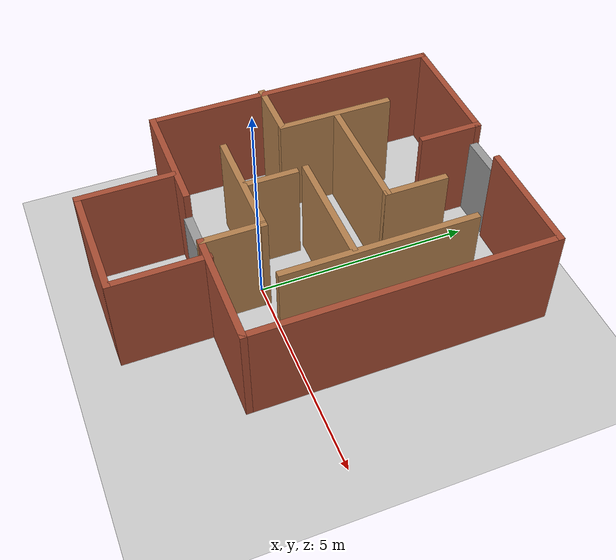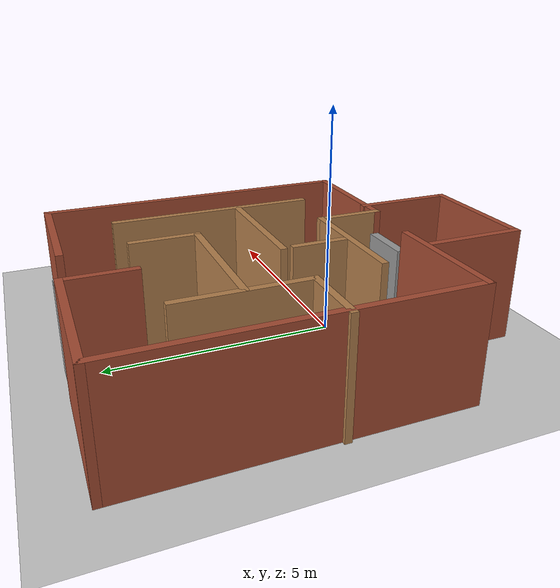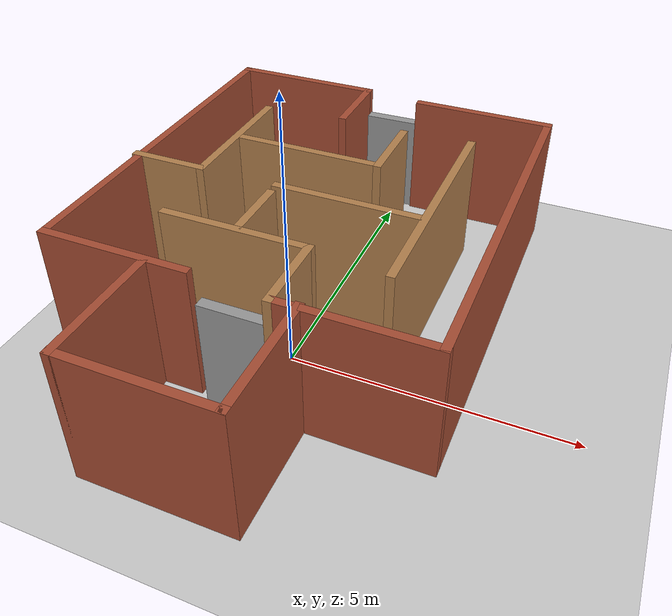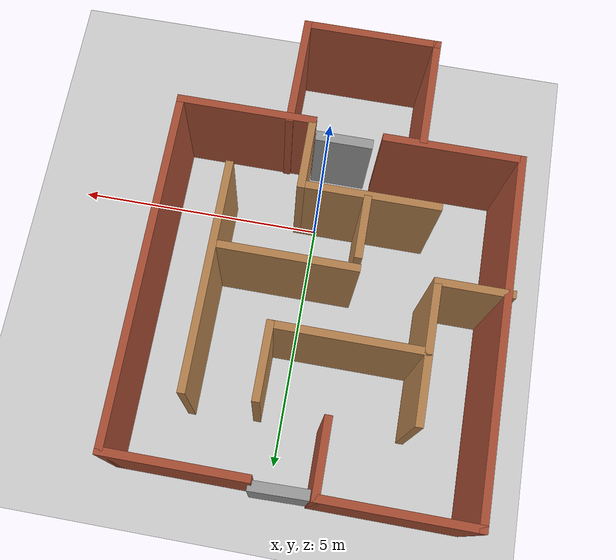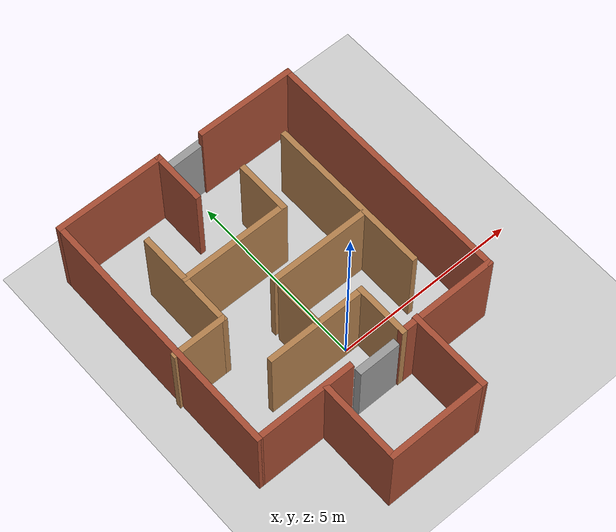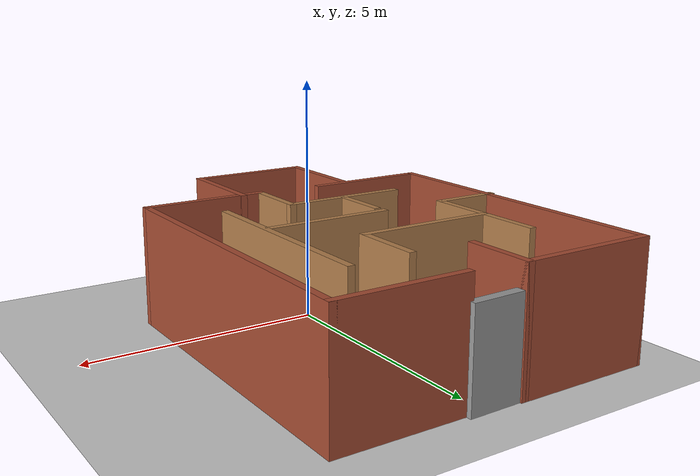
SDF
<sdf version="1.7">
 <world name="default">
  <light name="sun" type="directional">
   <pose>0 0 10 0 -0 0</pose>
   <diffuse>0.8 0.8 0.8 1</diffuse>
   <specular>0.2 0.2 0.2 1</specular>
   <attenuation>
    <range>1000</range>
    <constant>0.9</constant>
    <linear>0.01</linear>
    <quadratic>0.001</quadratic>
   </attenuation>
   <direction>-0.5 0.1 -0.9</direction>
   <spot><inner_angle>0</inner_angle><outer_angle>0</outer_angle><falloff>0</falloff></spot>
  </light>
  <model name="ground_plane">
   <static>1</static>
   <link name="link">
    <collision name="collision">
     <geometry><plane><normal>0 0 1</normal><size>100 100</size></plane></geometry>
     <surface>
      <contact><collide_bitmask>65535</collide_bitmask></contact>
      <friction><ode><mu>100</mu><mu2>50</mu2></ode></friction>
     </surface>
    </collision>
    <visual name="visual">
     <cast_shadows>0</cast_shadows>
     <geometry><plane><normal>0 0 1</normal><size>100 100</size></plane></geometry>
     <material>
      <script><uri>file://media/materials/scripts/gazebo.material</uri><name>Gazebo/Grey</name></script>
     </material>
    </visual>
   </link>
  </model>
  <gravity>0 0 -9.8</gravity>
  <magnetic_field>6e-06 2.3e-05 -4.2e-05</magnetic_field>
  <atmosphere type="adiabatic"/>
  <physics type="ode">
   <max_step_size>0.001</max_step_size>
   <real_time_factor>1</real_time_factor>
   <real_time_update_rate>1000</real_time_update_rate>
  </physics>
  <scene><ambient>0.4 0.4 0.4 1</ambient><background>0.7 0.7 0.7 1</background><shadows>1</shadows></scene>
  <audio><device>default</device></audio>
  <spherical_coordinates>
   <surface_model>EARTH_WGS84</surface_model>
   <latitude_deg>0</latitude_deg>
   <longitude_deg>0</longitude_deg>
   <elevation>0</elevation>
   <heading_deg>0</heading_deg>
  </spherical_coordinates>
  <model name="maze">
   <pose>-0.3755 1.08925 0 0 -0 0</pose>
   <link name="Door_0">
    <collision name="Door_0_Collision">
     <geometry><box><size>1.14334 0.2 2</size></box></geometry>
     <pose>0 0 1 0 -0 0</pose>
    </collision>
    <visual name="Door_0_Visual">
     <pose>0 0 1 0 -0 0</pose>
     <geometry><box><size>1.14334 0.2 2</size></box></geometry>
     <material>
      <script><uri>file://media/materials/scripts/gazebo.material</uri><name>Gazebo/Grey</name></script>
     </material>
    </visual>
    <pose>0.092757 -2.3864 0 0 -0 0</pose>
   </link>
   <link name="Door_1">
    <collision name="Door_1_Collision">
     <geometry><box><size>1.15389 0.2 2</size></box></geometry>
     <pose>0 0 1 0 -0 0</pose>
    </collision>
    <visual name="Door_1_Visual">
     <pose>0 0 1 0 -0 0</pose>
     <geometry><box><size>1.15389 0.2 2</size></box></geometry>
     <material>
      <script><uri>file://media/materials/scripts/gazebo.material</uri><name>Gazebo/Grey</name></script>
     </material>
    </visual>
    <pose>0.1781 4.46775 0 0 0 -3.11885</pose>
   </link>
   <link name="Wall_0">
    <collision name="Wall_0_Collision">
     <geometry><box><size>7 0.15 2.5</size></box></geometry>
     <pose>0 0 1.25 0 -0 0</pose>
    </collision>
    <visual name="Wall_0_Visual">
     <pose>0 0 1.25 0 -0 0</pose>
     <geometry><box><size>7 0.15 2.5</size></box></geometry>
     <material>
      <script><uri>file://media/materials/scripts/gazebo.material</uri><name>Gazebo/Bricks</name></script>
      <ambient>1 1 1 1</ambient>
     </material>
     <meta><layer>0</layer></meta>
    </visual>
    <pose>-3.28923 1.09265 0 0 -0 -1.5708</pose>
   </link>
   <link name="Wall_1">
    <collision name="Wall_1_Collision">
     <geometry><box><size>2.75 0.15 2.5</size></box></geometry>
     <pose>0 0 1.25 0 -0 0</pose>
    </collision>
    <visual name="Wall_1_Visual">
     <pose>0 0 1.25 0 -0 0</pose>
     <geometry><box><size>2.75 0.15 2.5</size></box></geometry>
     <material>
      <script><uri>file://media/materials/scripts/gazebo.material</uri><name>Gazebo/Bricks</name></script>
      <ambient>1 1 1 1</ambient>
     </material>
     <meta><layer>0</layer></meta>
    </visual>
    <pose>-1.98923 -2.33235 0 0 -0 0</pose>
   </link>
   <link name="Wall_10">
    <collision name="Wall_10_Collision">
     <geometry><box><size>1.5 0.15 2.5</size></box></geometry>
     <pose>0 0 1.25 0 -0 0</pose>
    </collision>
    <visual name="Wall_10_Visual">
     <pose>0 0 1.25 0 -0 0</pose>
     <geometry><box><size>1.5 0.15 2.5</size></box></geometry>
     <material>
      <script><uri>file://media/materials/scripts/gazebo.material</uri><name>Gazebo/Wood</name></script>
      <ambient>1 1 1 1</ambient>
     </material>
     <meta><layer>0</layer></meta>
    </visual>
    <pose>0.856081 2.34759 0 0 -0 1.5708</pose>
   </link>
   <link name="Wall_12">
    <collision name="Wall_12_Collision">
     <geometry><box><size>2.75 0.15 2.5</size></box></geometry>
     <pose>0 0 1.25 0 -0 0</pose>
    </collision>
    <visual name="Wall_12_Visual">
     <pose>0 0 1.25 0 -0 0</pose>
     <geometry><box><size>2.75 0.15 2.5</size></box></geometry>
     <material>
      <script><uri>file://media/materials/scripts/gazebo.material</uri><name>Gazebo/Bricks</name></script>
      <ambient>1 1 1 1</ambient>
     </material>
     <meta><layer>0</layer></meta>
    </visual>
    <pose>2.05862 4.402 0 0 -0 0</pose>
   </link>
   <link name="Wall_13">
    <collision name="Wall_13_Collision">
     <geometry><box><size>7 0.15 2.5</size></box></geometry>
     <pose>0 0 1.25 0 -0 0</pose>
    </collision>
    <visual name="Wall_13_Visual">
     <pose>0 0 1.25 0 -0 0</pose>
     <geometry><box><size>7 0.15 2.5</size></box></geometry>
     <material>
      <script><uri>file://media/materials/scripts/gazebo.material</uri><name>Gazebo/Bricks</name></script>
      <ambient>1 1 1 1</ambient>
     </material>
     <meta><layer>0</layer></meta>
    </visual>
    <pose>3.35862 0.976999 0 0 -0 -1.5708</pose>
   </link>
   <link name="Wall_14">
    <collision name="Wall_14_Collision">
     <geometry><box><size>2.75 0.15 2.5</size></box></geometry>
     <pose>0 0 1.25 0 -0 0</pose>
    </collision>
    <visual name="Wall_14_Visual">
     <pose>0 0 1.25 0 -0 0</pose>
     <geometry><box><size>2.75 0.15 2.5</size></box></geometry>
     <material>
      <script><uri>file://media/materials/scripts/gazebo.material</uri><name>Gazebo/Bricks</name></script>
      <ambient>1 1 1 1</ambient>
     </material>
     <meta><layer>0</layer></meta>
    </visual>
    <pose>2.05862 -2.448 0 0 -0 3.14159</pose>
   </link>
   <link name="Wall_15">
    <collision name="Wall_15_Collision">
     <geometry><box><size>1.5 0.15 2.5</size></box></geometry>
     <pose>0 0 1.25 0 -0 0</pose>
    </collision>
    <visual name="Wall_15_Visual">
     <pose>0 0 1.25 0 -0 0</pose>
     <geometry><box><size>1.5 0.15 2.5</size></box></geometry>
     <material>
      <script><uri>file://media/materials/scripts/gazebo.material</uri><name>Gazebo/Wood</name></script>
      <ambient>1 1 1 1</ambient>
     </material>
     <meta><layer>0</layer></meta>
    </visual>
    <pose>0.758624 -1.773 0 0 -0 1.5708</pose>
   </link>
   <link name="Wall_16">
    <collision name="Wall_16_Collision">
     <geometry><box><size>2.75 0.15 2.5</size></box></geometry>
     <pose>0 0 1.25 0 -0 0</pose>
    </collision>
    <visual name="Wall_16_Visual">
     <pose>0 0 1.25 0 -0 0</pose>
     <geometry><box><size>2.75 0.15 2.5</size></box></geometry>
     <material>
      <script><uri>file://media/materials/scripts/gazebo.material</uri><name>Gazebo/Wood</name></script>
      <ambient>1 1 1 1</ambient>
     </material>
     <meta><layer>0</layer></meta>
    </visual>
    <pose>-0.541376 -1.098 0 0 -0 3.14159</pose>
   </link>
   <link name="Wall_19">
    <collision name="Wall_19_Collision">
     <geometry><box><size>1.25 0.15 2.5</size></box></geometry>
     <pose>0 0 1.25 0 -0 0</pose>
    </collision>
    <visual name="Wall_19_Visual">
     <pose>0 0 1.25 0 -0 0</pose>
     <geometry><box><size>1.25 0.15 2.5</size></box></geometry>
     <material>
      <script><uri>file://media/materials/scripts/gazebo.material</uri><name>Gazebo/Wood</name></script>
      <ambient>1 1 1 1</ambient>
     </material>
     <meta><layer>0</layer></meta>
    </visual>
    <pose>-0.51356 -0.460563 0 0 -0 1.5708</pose>
   </link>
   <link name="Wall_23">
    <collision name="Wall_23_Collision">
     <geometry><box><size>4.5 0.15 2.5</size></box></geometry>
     <pose>0 0 1.25 0 -0 0</pose>
    </collision>
    <visual name="Wall_23_Visual">
     <pose>0 0 1.25 0 -0 0</pose>
     <geometry><box><size>4.5 0.15 2.5</size></box></geometry>
     <material>
      <script><uri>file://media/materials/scripts/gazebo.material</uri><name>Gazebo/Wood</name></script>
      <ambient>1 1 1 1</ambient>
     </material>
     <meta><layer>0</layer></meta>
    </visual>
    <pose>2.16959 0.931685 0 0 -0 -1.5708</pose>
   </link>
   <link name="Wall_25">
    <collision name="Wall_25_Collision">
     <geometry><box><size>2.75 0.15 2.5</size></box></geometry>
     <pose>0 0 1.25 0 -0 0</pose>
    </collision>
    <visual name="Wall_25_Visual">
     <pose>0 0 1.25 0 -0 0</pose>
     <geometry><box><size>2.75 0.15 2.5</size></box></geometry>
     <material>
      <script><uri>file://media/materials/scripts/gazebo.material</uri><name>Gazebo/Wood</name></script>
      <ambient>1 1 1 1</ambient>
     </material>
     <meta><layer>0</layer></meta>
    </visual>
    <pose>0.78644 0.354143 0 0 -0 0</pose>
   </link>
   <link name="Wall_27">
    <collision name="Wall_27_Collision">
     <geometry><box><size>2.25 0.15 2.5</size></box></geometry>
     <pose>0 0 1.25 0 -0 0</pose>
    </collision>
    <visual name="Wall_27_Visual">
     <pose>0 0 1.25 0 -0 0</pose>
     <geometry><box><size>2.25 0.15 2.5</size></box></geometry>
     <material>
      <script><uri>file://media/materials/scripts/gazebo.material</uri><name>Gazebo/Bricks</name></script>
      <ambient>1 1 1 1</ambient>
     </material>
     <meta><layer>0</layer></meta>
    </visual>
    <pose>-1.39592 -3.46765 0 0 -0 -1.5708</pose>
   </link>
   <link name="Wall_28">
    <collision name="Wall_28_Collision">
     <geometry><box><size>2.75 0.15 2.5</size></box></geometry>
     <pose>0 0 1.25 0 -0 0</pose>
    </collision>
    <visual name="Wall_28_Visual">
     <pose>0 0 1.25 0 -0 0</pose>
     <geometry><box><size>2.75 0.15 2.5</size></box></geometry>
     <material>
      <script><uri>file://media/materials/scripts/gazebo.material</uri><name>Gazebo/Bricks</name></script>
      <ambient>1 1 1 1</ambient>
     </material>
     <meta><layer>0</layer></meta>
    </visual>
    <pose>-0.095918 -4.51765 0 0 -0 0</pose>
   </link>
   <link name="Wall_29">
    <collision name="Wall_29_Collision">
     <geometry><box><size>2.25 0.15 2.5</size></box></geometry>
     <pose>0 0 1.25 0 -0 0</pose>
    </collision>
    <visual name="Wall_29_Visual">
     <pose>0 0 1.25 0 -0 0</pose>
     <geometry><box><size>2.25 0.15 2.5</size></box></geometry>
     <material>
      <script><uri>file://media/materials/scripts/gazebo.material</uri><name>Gazebo/Bricks</name></script>
      <ambient>1 1 1 1</ambient>
     </material>
     <meta><layer>0</layer></meta>
    </visual>
    <pose>1.20408 -3.46765 0 0 -0 1.5708</pose>
   </link>
   <link name="Wall_3">
    <collision name="Wall_3_Collision">
     <geometry><box><size>3 0.15 2.5</size></box></geometry>
     <pose>0 0 1.25 0 -0 0</pose>
    </collision>
    <visual name="Wall_3_Visual">
     <pose>0 0 1.25 0 -0 0</pose>
     <geometry><box><size>3 0.15 2.5</size></box></geometry>
     <material>
      <script><uri>file://media/materials/scripts/gazebo.material</uri><name>Gazebo/Bricks</name></script>
      <ambient>1 1 1 1</ambient>
     </material>
     <meta><layer>0</layer></meta>
    </visual>
    <pose>-1.86423 4.51765 0 0 -0 0</pose>
   </link>
   <link name="Wall_4">
    <collision name="Wall_4_Collision">
     <geometry><box><size>1.5 0.15 2.5</size></box></geometry>
     <pose>0 0 1.25 0 -0 0</pose>
    </collision>
    <visual name="Wall_4_Visual">
     <pose>0 0 1.25 0 -0 0</pose>
     <geometry><box><size>1.5 0.15 2.5</size></box></geometry>
     <material>
      <script><uri>file://media/materials/scripts/gazebo.material</uri><name>Gazebo/Bricks</name></script>
      <ambient>1 1 1 1</ambient>
     </material>
     <meta><layer>0</layer></meta>
    </visual>
    <pose>-0.439233 3.84265 0 0 -0 -1.5708</pose>
   </link>
   <link name="Wall_6">
    <collision name="Wall_6_Collision">
     <geometry><box><size>1.5 0.15 2.5</size></box></geometry>
     <pose>0 0 1.25 0 -0 0</pose>
    </collision>
    <visual name="Wall_6_Visual">
     <pose>0 0 1.25 0 -0 0</pose>
     <geometry><box><size>1.5 0.15 2.5</size></box></geometry>
     <material>
      <script><uri>file://media/materials/scripts/gazebo.material</uri><name>Gazebo/Wood</name></script>
      <ambient>1 1 1 1</ambient>
     </material>
     <meta><layer>0</layer></meta>
    </visual>
    <pose>-2.68362 0.354143 0 0 -0 0</pose>
   </link>
   <link name="Wall_7">
    <collision name="Wall_7_Collision">
     <geometry><box><size>2.75 0.15 2.5</size></box></geometry>
     <pose>0 0 1.25 0 -0 0</pose>
    </collision>
    <visual name="Wall_7_Visual">
     <pose>0 0 1.25 0 -0 0</pose>
     <geometry><box><size>2.75 0.15 2.5</size></box></geometry>
     <material>
      <script><uri>file://media/materials/scripts/gazebo.material</uri><name>Gazebo/Wood</name></script>
      <ambient>1 1 1 1</ambient>
     </material>
     <meta><layer>0</layer></meta>
    </visual>
    <pose>-2.00862 1.65414 0 0 -0 1.5708</pose>
   </link>
   <link name="Wall_9">
    <collision name="Wall_9_Collision">
     <geometry><box><size>3 0.15 2.5</size></box></geometry>
     <pose>0 0 1.25 0 -0 0</pose>
    </collision>
    <visual name="Wall_9_Visual">
     <pose>0 0 1.25 0 -0 0</pose>
     <geometry><box><size>3 0.15 2.5</size></box></geometry>
     <material>
      <script><uri>file://media/materials/scripts/gazebo.material</uri><name>Gazebo/Wood</name></script>
      <ambient>1 1 1 1</ambient>
     </material>
     <meta><layer>0</layer></meta>
    </visual>
    <pose>-0.568919 1.67259 0 0 -0 0</pose>
   </link>
   <static>1</static>
  </model>
 </world>
</sdf>
